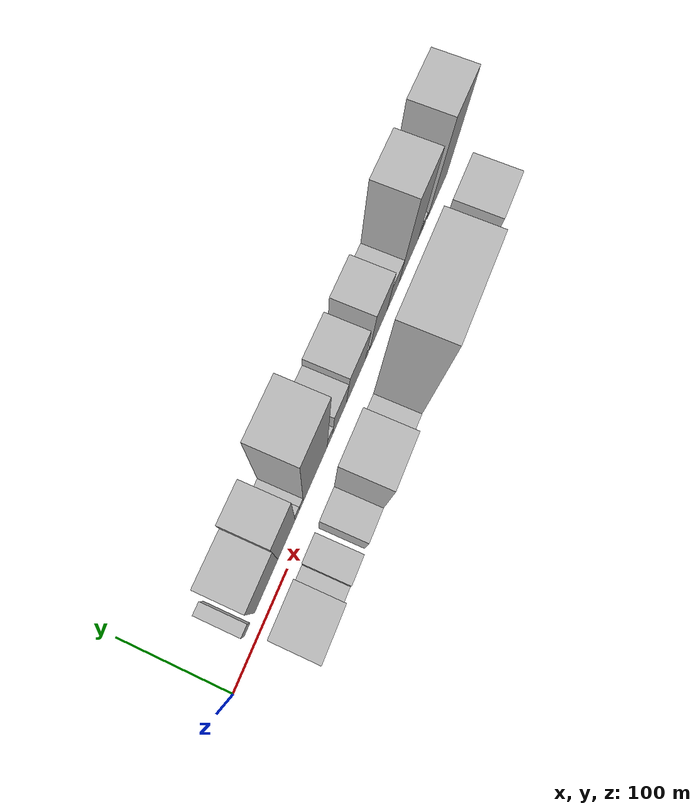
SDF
<sdf version="1.6">
 <world name="default">
  <scene>
   <sky><clouds><speed>12</speed></clouds></sky>
   <ambient>0.4 0.4 0.4 1</ambient>
   <background>0.7 0.7 0.7 1</background>
   <shadows>1</shadows>
  </scene>
  <gravity>0 0 -9.8066</gravity>
  <magnetic_field>6e-06 2.3e-05 -4.2e-05</magnetic_field>
  <physics default="0" name="default_physics" type="ode">
   <ode>
    <solver>
     <type>quick</type>
     <iters>10</iters>
     <sor>1.0</sor>
     <use_dynamic_moi_rescaling>0</use_dynamic_moi_rescaling>
    </solver>
    <constraints>
     <cfm>0</cfm>
     <erp>0.2</erp>
     <contact_max_correcting_vel>100</contact_max_correcting_vel>
     <contact_surface_layer>0.001</contact_surface_layer>
    </constraints>
   </ode>
   <max_step_size>0.004</max_step_size>
   <real_time_factor>1</real_time_factor>
   <real_time_update_rate>250</real_time_update_rate>
  </physics>
  <light name="sun" type="directional">
   <pose>0 0 10 0 0 0</pose>
   <diffuse>0.8 0.8 0.8 1</diffuse>
   <specular>0.2 0.2 0.2 1</specular>
   <attenuation>
    <range>1000</range>
    <constant>0.9</constant>
    <linear>0.01</linear>
    <quadratic>0.001</quadratic>
   </attenuation>
   <direction>-0.5 0.1 -0.9</direction>
  </light>
  <model name="building_1">
   <static>1</static>
   <pose>45.5367 30.0000 0 0.000000 0.000000 1.570796</pose>
   <link name="link">
    <pose>0 0 13.50 0 0 0</pose>
    <collision name="collision"><geometry><box><size>40.0000 11.0735 27.0000</size></box></geometry></collision>
    <visual name="visual">
     <cast_shadows>0</cast_shadows>
     <geometry><box><size>40.0000 11.0735 27.0000</size></box></geometry>
     <material>
      <script>
       <uri>model://HANNAS_wall/materials/scripts</uri>
       <uri>model://HANNAS_wall/materials/textures</uri>
       <name>vrc/HANNAS_wall</name>
      </script>
     </material>
    </visual>
   </link>
  </model>
  <model name="building_2">
   <static>1</static>
   <pose>81.1592 30.0000 0 0.000000 0.000000 1.570796</pose>
   <link name="link">
    <pose>0 0 43.50 0 0 0</pose>
    <collision name="collision"><geometry><box><size>40.0000 44.1714 87.0000</size></box></geometry></collision>
    <visual name="visual">
     <cast_shadows>0</cast_shadows>
     <geometry><box><size>40.0000 44.1714 87.0000</size></box></geometry>
     <material>
      <script>
       <uri>model://HANNAS_wall/materials/scripts</uri>
       <uri>model://HANNAS_wall/materials/textures</uri>
       <name>vrc/HANNAS_wall</name>
      </script>
     </material>
    </visual>
   </link>
  </model>
  <model name="building_3">
   <static>1</static>
   <pose>120.0275 30.0000 0 0.000000 0.000000 1.570796</pose>
   <link name="link">
    <pose>0 0 54.00 0 0 0</pose>
    <collision name="collision"><geometry><box><size>40.0000 33.5653 108.0000</size></box></geometry></collision>
    <visual name="visual">
     <cast_shadows>0</cast_shadows>
     <geometry><box><size>40.0000 33.5653 108.0000</size></box></geometry>
     <material>
      <script>
       <uri>model://HANNAS_wall/materials/scripts</uri>
       <uri>model://HANNAS_wall/materials/textures</uri>
       <name>vrc/HANNAS_wall</name>
      </script>
     </material>
    </visual>
   </link>
  </model>
  <model name="building_4">
   <static>1</static>
   <pose>141.1491 30.0000 0 0.000000 0.000000 1.570796</pose>
   <link name="link">
    <pose>0 0 10.50 0 0 0</pose>
    <collision name="collision"><geometry><box><size>40.0000 8.6779 21.0000</size></box></geometry></collision>
    <visual name="visual">
     <cast_shadows>0</cast_shadows>
     <geometry><box><size>40.0000 8.6779 21.0000</size></box></geometry>
     <material>
      <script>
       <uri>model://HANNAS_wall/materials/scripts</uri>
       <uri>model://HANNAS_wall/materials/textures</uri>
       <name>vrc/HANNAS_wall</name>
      </script>
     </material>
    </visual>
   </link>
  </model>
  <model name="building_5">
   <static>1</static>
   <pose>149.2468 30.0000 0 0.000000 0.000000 1.570796</pose>
   <link name="link">
    <pose>0 0 9.00 0 0 0</pose>
    <collision name="collision"><geometry><box><size>40.0000 7.5175 18.0000</size></box></geometry></collision>
    <visual name="visual">
     <cast_shadows>0</cast_shadows>
     <geometry><box><size>40.0000 7.5175 18.0000</size></box></geometry>
     <material>
      <script>
       <uri>model://HANNAS_wall/materials/scripts</uri>
       <uri>model://HANNAS_wall/materials/textures</uri>
       <name>vrc/HANNAS_wall</name>
      </script>
     </material>
    </visual>
   </link>
  </model>
  <model name="building_6">
   <static>1</static>
   <pose>177.5252 30.0000 0 0.000000 0.000000 1.570796</pose>
   <link name="link">
    <pose>0 0 78.00 0 0 0</pose>
    <collision name="collision"><geometry><box><size>40.0000 49.0393 156.0000</size></box></geometry></collision>
    <visual name="visual">
     <cast_shadows>0</cast_shadows>
     <geometry><box><size>40.0000 49.0393 156.0000</size></box></geometry>
     <material>
      <script>
       <uri>model://HANNAS_wall/materials/scripts</uri>
       <uri>model://HANNAS_wall/materials/textures</uri>
       <name>vrc/HANNAS_wall</name>
      </script>
     </material>
    </visual>
   </link>
  </model>
  <model name="building_7">
   <static>1</static>
   <pose>207.9645 30.0000 0 0.000000 0.000000 1.570796</pose>
   <link name="link">
    <pose>0 0 13.50 0 0 0</pose>
    <collision name="collision"><geometry><box><size>40.0000 11.8393 27.0000</size></box></geometry></collision>
    <visual name="visual">
     <cast_shadows>0</cast_shadows>
     <geometry><box><size>40.0000 11.8393 27.0000</size></box></geometry>
     <material>
      <script>
       <uri>model://HANNAS_wall/materials/scripts</uri>
       <uri>model://HANNAS_wall/materials/textures</uri>
       <name>vrc/HANNAS_wall</name>
      </script>
     </material>
    </visual>
   </link>
  </model>
  <model name="building_8">
   <static>1</static>
   <pose>228.5331 30.0000 0 0.000000 0.000000 1.570796</pose>
   <link name="link">
    <pose>0 0 28.50 0 0 0</pose>
    <collision name="collision"><geometry><box><size>40.0000 29.2979 57.0000</size></box></geometry></collision>
    <visual name="visual">
     <cast_shadows>0</cast_shadows>
     <geometry><box><size>40.0000 29.2979 57.0000</size></box></geometry>
     <material>
      <script>
       <uri>model://HANNAS_wall/materials/scripts</uri>
       <uri>model://HANNAS_wall/materials/textures</uri>
       <name>vrc/HANNAS_wall</name>
      </script>
     </material>
    </visual>
   </link>
  </model>
  <model name="building_9">
   <static>1</static>
   <pose>264.3272 30.0000 0 0.000000 0.000000 1.570796</pose>
   <link name="link">
    <pose>0 0 36.00 0 0 0</pose>
    <collision name="collision"><geometry><box><size>40.0000 42.2904 72.0000</size></box></geometry></collision>
    <visual name="visual">
     <cast_shadows>0</cast_shadows>
     <geometry><box><size>40.0000 42.2904 72.0000</size></box></geometry>
     <material>
      <script>
       <uri>model://HANNAS_wall/materials/scripts</uri>
       <uri>model://HANNAS_wall/materials/textures</uri>
       <name>vrc/HANNAS_wall</name>
      </script>
     </material>
    </visual>
   </link>
  </model>
  <model name="building_10">
   <static>1</static>
   <pose>289.1165 30.0000 0 0.000000 0.000000 1.570796</pose>
   <link name="link">
    <pose>0 0 9.00 0 0 0</pose>
    <collision name="collision"><geometry><box><size>40.0000 7.2881 18.0000</size></box></geometry></collision>
    <visual name="visual">
     <cast_shadows>0</cast_shadows>
     <geometry><box><size>40.0000 7.2881 18.0000</size></box></geometry>
     <material>
      <script>
       <uri>model://HANNAS_wall/materials/scripts</uri>
       <uri>model://HANNAS_wall/materials/textures</uri>
       <name>vrc/HANNAS_wall</name>
      </script>
     </material>
    </visual>
   </link>
  </model>
  <model name="building_11">
   <static>1</static>
   <pose>316.0593 30.0000 0 0.000000 0.000000 1.570796</pose>
   <link name="link">
    <pose>0 0 39.00 0 0 0</pose>
    <collision name="collision"><geometry><box><size>40.0000 40.5976 78.0000</size></box></geometry></collision>
    <visual name="visual">
     <cast_shadows>0</cast_shadows>
     <geometry><box><size>40.0000 40.5976 78.0000</size></box></geometry>
     <material>
      <script>
       <uri>model://HANNAS_wall/materials/scripts</uri>
       <uri>model://HANNAS_wall/materials/textures</uri>
       <name>vrc/HANNAS_wall</name>
      </script>
     </material>
    </visual>
   </link>
  </model>
  <model name="building_12">
   <static>1</static>
   <pose>350.3857 30.0000 0 0.000000 0.000000 1.570796</pose>
   <link name="link">
    <pose>0 0 24.00 0 0 0</pose>
    <collision name="collision"><geometry><box><size>40.0000 28.0552 48.0000</size></box></geometry></collision>
    <visual name="visual">
     <cast_shadows>0</cast_shadows>
     <geometry><box><size>40.0000 28.0552 48.0000</size></box></geometry>
     <material>
      <script>
       <uri>model://HANNAS_wall/materials/scripts</uri>
       <uri>model://HANNAS_wall/materials/textures</uri>
       <name>vrc/HANNAS_wall</name>
      </script>
     </material>
    </visual>
   </link>
  </model>
  <model name="building_13">
   <static>1</static>
   <pose>388.3009 30.0000 0 0.000000 0.000000 1.570796</pose>
   <link name="link">
    <pose>0 0 72.00 0 0 0</pose>
    <collision name="collision"><geometry><box><size>40.0000 47.7751 144.0000</size></box></geometry></collision>
    <visual name="visual">
     <cast_shadows>0</cast_shadows>
     <geometry><box><size>40.0000 47.7751 144.0000</size></box></geometry>
     <material>
      <script>
       <uri>model://HANNAS_wall/materials/scripts</uri>
       <uri>model://HANNAS_wall/materials/textures</uri>
       <name>vrc/HANNAS_wall</name>
      </script>
     </material>
    </visual>
   </link>
  </model>
  <model name="building_14">
   <static>1</static>
   <pose>416.6782 30.0000 0 0.000000 0.000000 1.570796</pose>
   <link name="link">
    <pose>0 0 10.50 0 0 0</pose>
    <collision name="collision"><geometry><box><size>40.0000 8.9795 21.0000</size></box></geometry></collision>
    <visual name="visual">
     <cast_shadows>0</cast_shadows>
     <geometry><box><size>40.0000 8.9795 21.0000</size></box></geometry>
     <material>
      <script>
       <uri>model://HANNAS_wall/materials/scripts</uri>
       <uri>model://HANNAS_wall/materials/textures</uri>
       <name>vrc/HANNAS_wall</name>
      </script>
     </material>
    </visual>
   </link>
  </model>
  <model name="building_15">
   <static>1</static>
   <pose>426.0127 30.0000 0 0.000000 0.000000 1.570796</pose>
   <link name="link">
    <pose>0 0 10.50 0 0 0</pose>
    <collision name="collision"><geometry><box><size>40.0000 9.6896 21.0000</size></box></geometry></collision>
    <visual name="visual">
     <cast_shadows>0</cast_shadows>
     <geometry><box><size>40.0000 9.6896 21.0000</size></box></geometry>
     <material>
      <script>
       <uri>model://HANNAS_wall/materials/scripts</uri>
       <uri>model://HANNAS_wall/materials/textures</uri>
       <name>vrc/HANNAS_wall</name>
      </script>
     </material>
    </visual>
   </link>
  </model>
  <model name="building_16">
   <static>1</static>
   <pose>462.6451 30.0000 0 0.000000 0.000000 1.570796</pose>
   <link name="link">
    <pose>0 0 73.50 0 0 0</pose>
    <collision name="collision"><geometry><box><size>40.0000 51.5750 147.0000</size></box></geometry></collision>
    <visual name="visual">
     <cast_shadows>0</cast_shadows>
     <geometry><box><size>40.0000 51.5750 147.0000</size></box></geometry>
     <material>
      <script>
       <uri>model://HANNAS_wall/materials/scripts</uri>
       <uri>model://HANNAS_wall/materials/textures</uri>
       <name>vrc/HANNAS_wall</name>
      </script>
     </material>
    </visual>
   </link>
  </model>
  <model name="building_17">
   <static>1</static>
   <pose>71.7341 -30.0000 0 0.000000 0.000000 1.570796</pose>
   <link name="link">
    <pose>0 0 37.50 0 0 0</pose>
    <collision name="collision"><geometry><box><size>40.0000 43.4682 75.0000</size></box></geometry></collision>
    <visual name="visual">
     <cast_shadows>0</cast_shadows>
     <geometry><box><size>40.0000 43.4682 75.0000</size></box></geometry>
     <material>
      <script>
       <uri>model://HANNAS_wall/materials/scripts</uri>
       <uri>model://HANNAS_wall/materials/textures</uri>
       <name>vrc/HANNAS_wall</name>
      </script>
     </material>
    </visual>
   </link>
  </model>
  <model name="building_18">
   <static>1</static>
   <pose>99.8404 -30.0000 0 0.000000 0.000000 1.570796</pose>
   <link name="link">
    <pose>0 0 13.50 0 0 0</pose>
    <collision name="collision"><geometry><box><size>40.0000 12.7443 27.0000</size></box></geometry></collision>
    <visual name="visual">
     <cast_shadows>0</cast_shadows>
     <geometry><box><size>40.0000 12.7443 27.0000</size></box></geometry>
     <material>
      <script>
       <uri>model://HANNAS_wall/materials/scripts</uri>
       <uri>model://HANNAS_wall/materials/textures</uri>
       <name>vrc/HANNAS_wall</name>
      </script>
     </material>
    </visual>
   </link>
  </model>
  <model name="building_19">
   <static>1</static>
   <pose>118.4629 -30.0000 0 0.000000 0.000000 1.570796</pose>
   <link name="link">
    <pose>0 0 22.50 0 0 0</pose>
    <collision name="collision"><geometry><box><size>40.0000 24.5007 45.0000</size></box></geometry></collision>
    <visual name="visual">
     <cast_shadows>0</cast_shadows>
     <geometry><box><size>40.0000 24.5007 45.0000</size></box></geometry>
     <material>
      <script>
       <uri>model://HANNAS_wall/materials/scripts</uri>
       <uri>model://HANNAS_wall/materials/textures</uri>
       <name>vrc/HANNAS_wall</name>
      </script>
     </material>
    </visual>
   </link>
  </model>
  <model name="building_20">
   <static>1</static>
   <pose>152.8165 -30.0000 0 0.000000 0.000000 1.570796</pose>
   <link name="link">
    <pose>0 0 25.50 0 0 0</pose>
    <collision name="collision"><geometry><box><size>40.0000 28.2065 51.0000</size></box></geometry></collision>
    <visual name="visual">
     <cast_shadows>0</cast_shadows>
     <geometry><box><size>40.0000 28.2065 51.0000</size></box></geometry>
     <material>
      <script>
       <uri>model://HANNAS_wall/materials/scripts</uri>
       <uri>model://HANNAS_wall/materials/textures</uri>
       <name>vrc/HANNAS_wall</name>
      </script>
     </material>
    </visual>
   </link>
  </model>
  <model name="building_21">
   <static>1</static>
   <pose>188.3258 -30.0000 0 0.000000 0.000000 1.570796</pose>
   <link name="link">
    <pose>0 0 67.50 0 0 0</pose>
    <collision name="collision"><geometry><box><size>40.0000 42.8120 135.0000</size></box></geometry></collision>
    <visual name="visual">
     <cast_shadows>0</cast_shadows>
     <geometry><box><size>40.0000 42.8120 135.0000</size></box></geometry>
     <material>
      <script>
       <uri>model://HANNAS_wall/materials/scripts</uri>
       <uri>model://HANNAS_wall/materials/textures</uri>
       <name>vrc/HANNAS_wall</name>
      </script>
     </material>
    </visual>
   </link>
  </model>
  <model name="building_22">
   <static>1</static>
   <pose>226.4628 -30.0000 0 0.000000 0.000000 1.570796</pose>
   <link name="link">
    <pose>0 0 30.00 0 0 0</pose>
    <collision name="collision"><geometry><box><size>40.0000 33.4621 60.0000</size></box></geometry></collision>
    <visual name="visual">
     <cast_shadows>0</cast_shadows>
     <geometry><box><size>40.0000 33.4621 60.0000</size></box></geometry>
     <material>
      <script>
       <uri>model://HANNAS_wall/materials/scripts</uri>
       <uri>model://HANNAS_wall/materials/textures</uri>
       <name>vrc/HANNAS_wall</name>
      </script>
     </material>
    </visual>
   </link>
  </model>
  <model name="building_23">
   <static>1</static>
   <pose>283.0121 -30.0000 0 0.000000 0.000000 1.570796</pose>
   <link name="link">
    <pose>0 0 106.50 0 0 0</pose>
    <collision name="collision"><geometry><box><size>40.0000 79.6364 213.0000</size></box></geometry></collision>
    <visual name="visual">
     <cast_shadows>0</cast_shadows>
     <geometry><box><size>40.0000 79.6364 213.0000</size></box></geometry>
     <material>
      <script>
       <uri>model://HANNAS_wall/materials/scripts</uri>
       <uri>model://HANNAS_wall/materials/textures</uri>
       <name>vrc/HANNAS_wall</name>
      </script>
     </material>
    </visual>
   </link>
  </model>
  <model name="building_24">
   <static>1</static>
   <pose>333.2425 -30.0000 0 0.000000 0.000000 1.570796</pose>
   <link name="link">
    <pose>0 0 19.50 0 0 0</pose>
    <collision name="collision"><geometry><box><size>40.0000 20.8243 39.0000</size></box></geometry></collision>
    <visual name="visual">
     <cast_shadows>0</cast_shadows>
     <geometry><box><size>40.0000 20.8243 39.0000</size></box></geometry>
     <material>
      <script>
       <uri>model://HANNAS_wall/materials/scripts</uri>
       <uri>model://HANNAS_wall/materials/textures</uri>
       <name>vrc/HANNAS_wall</name>
      </script>
     </material>
    </visual>
   </link>
  </model>
  <model name="building_25">
   <static>1</static>
   <pose>360.2270 -30.0000 0 0.000000 0.000000 1.570796</pose>
   <link name="link">
    <pose>0 0 21.00 0 0 0</pose>
    <collision name="collision"><geometry><box><size>40.0000 25.1448 42.0000</size></box></geometry></collision>
    <visual name="visual">
     <cast_shadows>0</cast_shadows>
     <geometry><box><size>40.0000 25.1448 42.0000</size></box></geometry>
     <material>
      <script>
       <uri>model://HANNAS_wall/materials/scripts</uri>
       <uri>model://HANNAS_wall/materials/textures</uri>
       <name>vrc/HANNAS_wall</name>
      </script>
     </material>
    </visual>
   </link>
  </model>
  <model name="building_26">
   <static>1</static>
   <pose>404.7092 -30.0000 0 0.000000 0.000000 1.570796</pose>
   <link name="link">
    <pose>0 0 64.50 0 0 0</pose>
    <collision name="collision"><geometry><box><size>40.0000 43.8195 129.0000</size></box></geometry></collision>
    <visual name="visual">
     <cast_shadows>0</cast_shadows>
     <geometry><box><size>40.0000 43.8195 129.0000</size></box></geometry>
     <material>
      <script>
       <uri>model://HANNAS_wall/materials/scripts</uri>
       <uri>model://HANNAS_wall/materials/textures</uri>
       <name>vrc/HANNAS_wall</name>
      </script>
     </material>
    </visual>
   </link>
  </model>
  <model name="building_27">
   <static>1</static>
   <pose>434.5311 -30.0000 0 0.000000 0.000000 1.570796</pose>
   <link name="link">
    <pose>0 0 15.00 0 0 0</pose>
    <collision name="collision"><geometry><box><size>40.0000 15.8243 30.0000</size></box></geometry></collision>
    <visual name="visual">
     <cast_shadows>0</cast_shadows>
     <geometry><box><size>40.0000 15.8243 30.0000</size></box></geometry>
     <material>
      <script>
       <uri>model://HANNAS_wall/materials/scripts</uri>
       <uri>model://HANNAS_wall/materials/textures</uri>
       <name>vrc/HANNAS_wall</name>
      </script>
     </material>
    </visual>
   </link>
  </model>
  <model name="building_28">
   <static>1</static>
   <pose>457.2310 -30.0000 0 0.000000 0.000000 1.570796</pose>
   <link name="link">
    <pose>0 0 10.50 0 0 0</pose>
    <collision name="collision"><geometry><box><size>40.0000 9.5756 21.0000</size></box></geometry></collision>
    <visual name="visual">
     <cast_shadows>0</cast_shadows>
     <geometry><box><size>40.0000 9.5756 21.0000</size></box></geometry>
     <material>
      <script>
       <uri>model://HANNAS_wall/materials/scripts</uri>
       <uri>model://HANNAS_wall/materials/textures</uri>
       <name>vrc/HANNAS_wall</name>
      </script>
     </material>
    </visual>
   </link>
  </model>
 </world>
</sdf>
